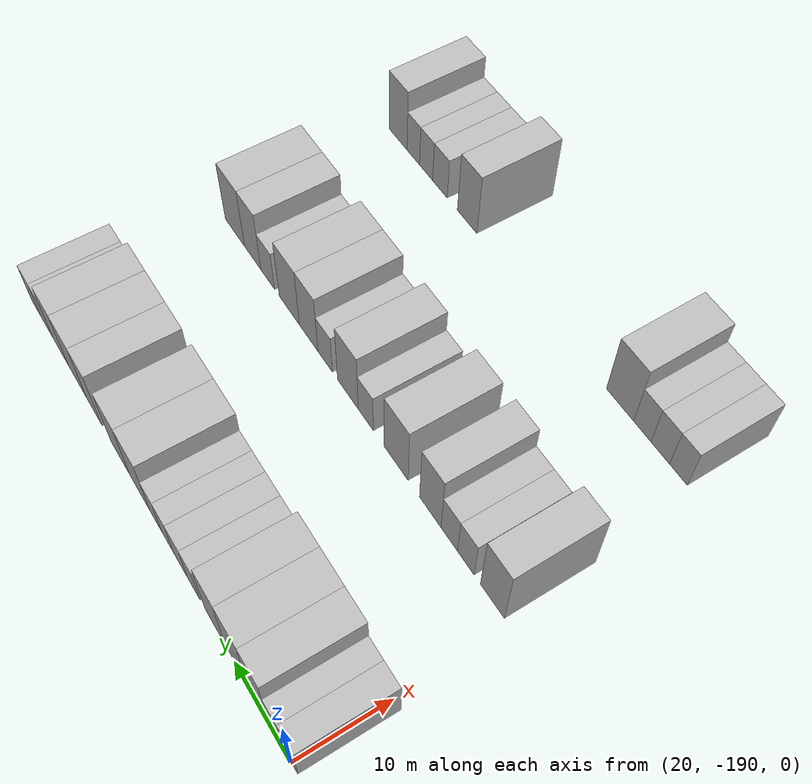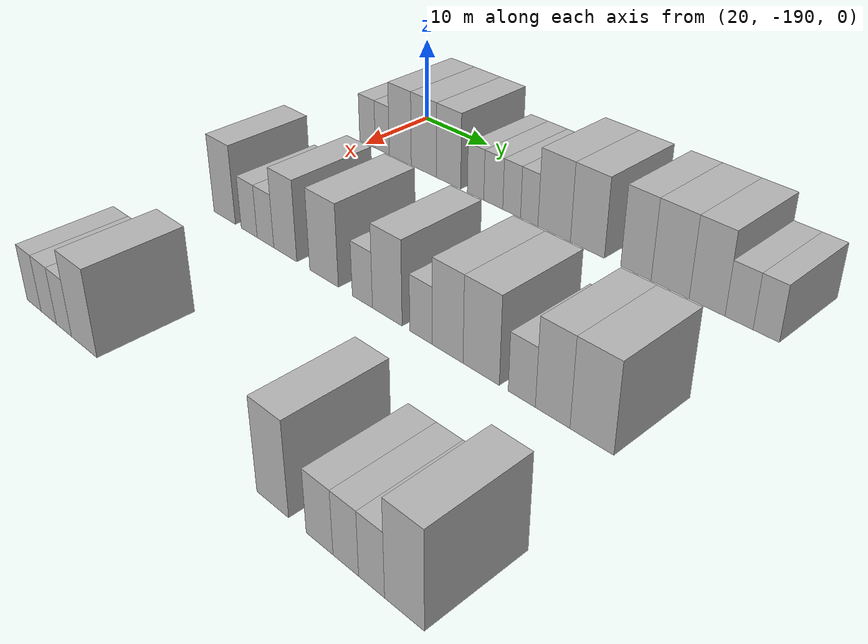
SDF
<sdf version="1.6">
 <world name="default">
  <model name="building_45">
   <static>1</static>
   <pose>25.0000 -189.7467 0 0.000000 0.000000 0.000000</pose>
   <link name="link">
    <pose>0 0 3.00 0 0 0</pose>
    <collision name="collision"><geometry><box><size>10.0000 2.7145 6.0000</size></box></geometry></collision>
    <visual name="visual">
     <cast_shadows>0</cast_shadows>
     <geometry><box><size>10.0000 2.7145 6.0000</size></box></geometry>
     <material>
      <script>
       <uri>model://HANNAS_wall/materials/scripts</uri>
       <uri>model://HANNAS_wall/materials/textures</uri>
       <name>vrc/HANNAS_wall</name>
      </script>
     </material>
    </visual>
   </link>
  </model>
  <model name="building_46">
   <static>1</static>
   <pose>25.0000 -187.1849 0 0.000000 0.000000 0.000000</pose>
   <link name="link">
    <pose>0 0 3.00 0 0 0</pose>
    <collision name="collision"><geometry><box><size>10.0000 2.4091 6.0000</size></box></geometry></collision>
    <visual name="visual">
     <cast_shadows>0</cast_shadows>
     <geometry><box><size>10.0000 2.4091 6.0000</size></box></geometry>
     <material>
      <script>
       <uri>model://HANNAS_wall/materials/scripts</uri>
       <uri>model://HANNAS_wall/materials/textures</uri>
       <name>vrc/HANNAS_wall</name>
      </script>
     </material>
    </visual>
   </link>
  </model>
  <model name="building_47">
   <static>1</static>
   <pose>25.0000 -184.1422 0 0.000000 0.000000 0.000000</pose>
   <link name="link">
    <pose>0 0 4.50 0 0 0</pose>
    <collision name="collision"><geometry><box><size>10.0000 3.6763 9.0000</size></box></geometry></collision>
    <visual name="visual">
     <cast_shadows>0</cast_shadows>
     <geometry><box><size>10.0000 3.6763 9.0000</size></box></geometry>
     <material>
      <script>
       <uri>model://HANNAS_wall/materials/scripts</uri>
       <uri>model://HANNAS_wall/materials/textures</uri>
       <name>vrc/HANNAS_wall</name>
      </script>
     </material>
    </visual>
   </link>
  </model>
  <model name="building_48">
   <static>1</static>
   <pose>25.0000 -180.2692 0 0.000000 0.000000 0.000000</pose>
   <link name="link">
    <pose>0 0 4.50 0 0 0</pose>
    <collision name="collision"><geometry><box><size>10.0000 4.0699 9.0000</size></box></geometry></collision>
    <visual name="visual">
     <cast_shadows>0</cast_shadows>
     <geometry><box><size>10.0000 4.0699 9.0000</size></box></geometry>
     <material>
      <script>
       <uri>model://HANNAS_wall/materials/scripts</uri>
       <uri>model://HANNAS_wall/materials/textures</uri>
       <name>vrc/HANNAS_wall</name>
      </script>
     </material>
    </visual>
   </link>
  </model>
  <model name="building_49">
   <static>1</static>
   <pose>25.0000 -176.3630 0 0.000000 0.000000 0.000000</pose>
   <link name="link">
    <pose>0 0 4.50 0 0 0</pose>
    <collision name="collision"><geometry><box><size>10.0000 3.7425 9.0000</size></box></geometry></collision>
    <visual name="visual">
     <cast_shadows>0</cast_shadows>
     <geometry><box><size>10.0000 3.7425 9.0000</size></box></geometry>
     <material>
      <script>
       <uri>model://HANNAS_wall/materials/scripts</uri>
       <uri>model://HANNAS_wall/materials/textures</uri>
       <name>vrc/HANNAS_wall</name>
      </script>
     </material>
    </visual>
   </link>
  </model>
  <model name="building_50">
   <static>1</static>
   <pose>25.0000 -172.2664 0 0.000000 0.000000 0.000000</pose>
   <link name="link">
    <pose>0 0 3.00 0 0 0</pose>
    <collision name="collision"><geometry><box><size>10.0000 2.4507 6.0000</size></box></geometry></collision>
    <visual name="visual">
     <cast_shadows>0</cast_shadows>
     <geometry><box><size>10.0000 2.4507 6.0000</size></box></geometry>
     <material>
      <script>
       <uri>model://HANNAS_wall/materials/scripts</uri>
       <uri>model://HANNAS_wall/materials/textures</uri>
       <name>vrc/HANNAS_wall</name>
      </script>
     </material>
    </visual>
   </link>
  </model>
  <model name="building_51">
   <static>1</static>
   <pose>25.0000 -169.6635 0 0.000000 0.000000 0.000000</pose>
   <link name="link">
    <pose>0 0 3.00 0 0 0</pose>
    <collision name="collision"><geometry><box><size>10.0000 2.7552 6.0000</size></box></geometry></collision>
    <visual name="visual">
     <cast_shadows>0</cast_shadows>
     <geometry><box><size>10.0000 2.7552 6.0000</size></box></geometry>
     <material>
      <script>
       <uri>model://HANNAS_wall/materials/scripts</uri>
       <uri>model://HANNAS_wall/materials/textures</uri>
       <name>vrc/HANNAS_wall</name>
      </script>
     </material>
    </visual>
   </link>
  </model>
  <model name="building_52">
   <static>1</static>
   <pose>25.0000 -167.0342 0 0.000000 0.000000 0.000000</pose>
   <link name="link">
    <pose>0 0 3.00 0 0 0</pose>
    <collision name="collision"><geometry><box><size>10.0000 2.5033 6.0000</size></box></geometry></collision>
    <visual name="visual">
     <cast_shadows>0</cast_shadows>
     <geometry><box><size>10.0000 2.5033 6.0000</size></box></geometry>
     <material>
      <script>
       <uri>model://HANNAS_wall/materials/scripts</uri>
       <uri>model://HANNAS_wall/materials/textures</uri>
       <name>vrc/HANNAS_wall</name>
      </script>
     </material>
    </visual>
   </link>
  </model>
  <model name="building_53">
   <static>1</static>
   <pose>25.0000 -164.5823 0 0.000000 0.000000 0.000000</pose>
   <link name="link">
    <pose>0 0 3.00 0 0 0</pose>
    <collision name="collision"><geometry><box><size>10.0000 2.4005 6.0000</size></box></geometry></collision>
    <visual name="visual">
     <cast_shadows>0</cast_shadows>
     <geometry><box><size>10.0000 2.4005 6.0000</size></box></geometry>
     <material>
      <script>
       <uri>model://HANNAS_wall/materials/scripts</uri>
       <uri>model://HANNAS_wall/materials/textures</uri>
       <name>vrc/HANNAS_wall</name>
      </script>
     </material>
    </visual>
   </link>
  </model>
  <model name="building_54">
   <static>1</static>
   <pose>25.0000 -161.2179 0 0.000000 0.000000 0.000000</pose>
   <link name="link">
    <pose>0 0 4.50 0 0 0</pose>
    <collision name="collision"><geometry><box><size>10.0000 4.3284 9.0000</size></box></geometry></collision>
    <visual name="visual">
     <cast_shadows>0</cast_shadows>
     <geometry><box><size>10.0000 4.3284 9.0000</size></box></geometry>
     <material>
      <script>
       <uri>model://HANNAS_wall/materials/scripts</uri>
       <uri>model://HANNAS_wall/materials/textures</uri>
       <name>vrc/HANNAS_wall</name>
      </script>
     </material>
    </visual>
   </link>
  </model>
  <model name="building_55">
   <static>1</static>
   <pose>25.0000 -156.8901 0 0.000000 0.000000 0.000000</pose>
   <link name="link">
    <pose>0 0 4.50 0 0 0</pose>
    <collision name="collision"><geometry><box><size>10.0000 4.3271 9.0000</size></box></geometry></collision>
    <visual name="visual">
     <cast_shadows>0</cast_shadows>
     <geometry><box><size>10.0000 4.3271 9.0000</size></box></geometry>
     <material>
      <script>
       <uri>model://HANNAS_wall/materials/scripts</uri>
       <uri>model://HANNAS_wall/materials/textures</uri>
       <name>vrc/HANNAS_wall</name>
      </script>
     </material>
    </visual>
   </link>
  </model>
  <model name="building_56">
   <static>1</static>
   <pose>25.0000 -150.9206 0 0.000000 0.000000 0.000000</pose>
   <link name="link">
    <pose>0 0 4.50 0 0 0</pose>
    <collision name="collision"><geometry><box><size>10.0000 3.6120 9.0000</size></box></geometry></collision>
    <visual name="visual">
     <cast_shadows>0</cast_shadows>
     <geometry><box><size>10.0000 3.6120 9.0000</size></box></geometry>
     <material>
      <script>
       <uri>model://HANNAS_wall/materials/scripts</uri>
       <uri>model://HANNAS_wall/materials/textures</uri>
       <name>vrc/HANNAS_wall</name>
      </script>
     </material>
    </visual>
   </link>
  </model>
  <model name="building_57">
   <static>1</static>
   <pose>25.0000 -146.9471 0 0.000000 0.000000 0.000000</pose>
   <link name="link">
    <pose>0 0 4.50 0 0 0</pose>
    <collision name="collision"><geometry><box><size>10.0000 4.3351 9.0000</size></box></geometry></collision>
    <visual name="visual">
     <cast_shadows>0</cast_shadows>
     <geometry><box><size>10.0000 4.3351 9.0000</size></box></geometry>
     <material>
      <script>
       <uri>model://HANNAS_wall/materials/scripts</uri>
       <uri>model://HANNAS_wall/materials/textures</uri>
       <name>vrc/HANNAS_wall</name>
      </script>
     </material>
    </visual>
   </link>
  </model>
  <model name="building_58">
   <static>1</static>
   <pose>25.0000 -142.8292 0 0.000000 0.000000 0.000000</pose>
   <link name="link">
    <pose>0 0 4.50 0 0 0</pose>
    <collision name="collision"><geometry><box><size>10.0000 3.9007 9.0000</size></box></geometry></collision>
    <visual name="visual">
     <cast_shadows>0</cast_shadows>
     <geometry><box><size>10.0000 3.9007 9.0000</size></box></geometry>
     <material>
      <script>
       <uri>model://HANNAS_wall/materials/scripts</uri>
       <uri>model://HANNAS_wall/materials/textures</uri>
       <name>vrc/HANNAS_wall</name>
      </script>
     </material>
    </visual>
   </link>
  </model>
  <model name="building_59">
   <static>1</static>
   <pose>25.0000 -139.4191 0 0.000000 0.000000 0.000000</pose>
   <link name="link">
    <pose>0 0 3.00 0 0 0</pose>
    <collision name="collision"><geometry><box><size>10.0000 2.9196 6.0000</size></box></geometry></collision>
    <visual name="visual">
     <cast_shadows>0</cast_shadows>
     <geometry><box><size>10.0000 2.9196 6.0000</size></box></geometry>
     <material>
      <script>
       <uri>model://HANNAS_wall/materials/scripts</uri>
       <uri>model://HANNAS_wall/materials/textures</uri>
       <name>vrc/HANNAS_wall</name>
      </script>
     </material>
    </visual>
   </link>
  </model>
  <model name="building_60">
   <static>1</static>
   <pose>25.0000 -136.6225 0 0.000000 0.000000 0.000000</pose>
   <link name="link">
    <pose>0 0 3.00 0 0 0</pose>
    <collision name="collision"><geometry><box><size>10.0000 2.6735 6.0000</size></box></geometry></collision>
    <visual name="visual">
     <cast_shadows>0</cast_shadows>
     <geometry><box><size>10.0000 2.6735 6.0000</size></box></geometry>
     <material>
      <script>
       <uri>model://HANNAS_wall/materials/scripts</uri>
       <uri>model://HANNAS_wall/materials/textures</uri>
       <name>vrc/HANNAS_wall</name>
      </script>
     </material>
    </visual>
   </link>
  </model>
  <model name="building_243">
   <static>1</static>
   <pose>47.0000 -187.2231 0 0.000000 0.000000 0.000000</pose>
   <link name="link">
    <pose>0 0 4.50 0 0 0</pose>
    <collision name="collision"><geometry><box><size>10.0000 3.7692 9.0000</size></box></geometry></collision>
    <visual name="visual">
     <cast_shadows>0</cast_shadows>
     <geometry><box><size>10.0000 3.7692 9.0000</size></box></geometry>
     <material>
      <script>
       <uri>model://HANNAS_wall/materials/scripts</uri>
       <uri>model://HANNAS_wall/materials/textures</uri>
       <name>vrc/HANNAS_wall</name>
      </script>
     </material>
    </visual>
   </link>
  </model>
  <model name="building_244">
   <static>1</static>
   <pose>47.0000 -182.9879 0 0.000000 0.000000 0.000000</pose>
   <link name="link">
    <pose>0 0 3.00 0 0 0</pose>
    <collision name="collision"><geometry><box><size>10.0000 2.7013 6.0000</size></box></geometry></collision>
    <visual name="visual">
     <cast_shadows>0</cast_shadows>
     <geometry><box><size>10.0000 2.7013 6.0000</size></box></geometry>
     <material>
      <script>
       <uri>model://HANNAS_wall/materials/scripts</uri>
       <uri>model://HANNAS_wall/materials/textures</uri>
       <name>vrc/HANNAS_wall</name>
      </script>
     </material>
    </visual>
   </link>
  </model>
  <model name="building_245">
   <static>1</static>
   <pose>47.0000 -180.2691 0 0.000000 0.000000 0.000000</pose>
   <link name="link">
    <pose>0 0 3.00 0 0 0</pose>
    <collision name="collision"><geometry><box><size>10.0000 2.7363 6.0000</size></box></geometry></collision>
    <visual name="visual">
     <cast_shadows>0</cast_shadows>
     <geometry><box><size>10.0000 2.7363 6.0000</size></box></geometry>
     <material>
      <script>
       <uri>model://HANNAS_wall/materials/scripts</uri>
       <uri>model://HANNAS_wall/materials/textures</uri>
       <name>vrc/HANNAS_wall</name>
      </script>
     </material>
    </visual>
   </link>
  </model>
  <model name="building_246">
   <static>1</static>
   <pose>47.0000 -177.0716 0 0.000000 0.000000 0.000000</pose>
   <link name="link">
    <pose>0 0 4.50 0 0 0</pose>
    <collision name="collision"><geometry><box><size>10.0000 3.6588 9.0000</size></box></geometry></collision>
    <visual name="visual">
     <cast_shadows>0</cast_shadows>
     <geometry><box><size>10.0000 3.6588 9.0000</size></box></geometry>
     <material>
      <script>
       <uri>model://HANNAS_wall/materials/scripts</uri>
       <uri>model://HANNAS_wall/materials/textures</uri>
       <name>vrc/HANNAS_wall</name>
      </script>
     </material>
    </visual>
   </link>
  </model>
  <model name="building_247">
   <static>1</static>
   <pose>47.0000 -171.1085 0 0.000000 0.000000 0.000000</pose>
   <link name="link">
    <pose>0 0 4.50 0 0 0</pose>
    <collision name="collision"><geometry><box><size>10.0000 4.2673 9.0000</size></box></geometry></collision>
    <visual name="visual">
     <cast_shadows>0</cast_shadows>
     <geometry><box><size>10.0000 4.2673 9.0000</size></box></geometry>
     <material>
      <script>
       <uri>model://HANNAS_wall/materials/scripts</uri>
       <uri>model://HANNAS_wall/materials/textures</uri>
       <name>vrc/HANNAS_wall</name>
      </script>
     </material>
    </visual>
   </link>
  </model>
  <model name="building_248">
   <static>1</static>
   <pose>47.0000 -165.5632 0 0.000000 0.000000 0.000000</pose>
   <link name="link">
    <pose>0 0 3.00 0 0 0</pose>
    <collision name="collision"><geometry><box><size>10.0000 2.8233 6.0000</size></box></geometry></collision>
    <visual name="visual">
     <cast_shadows>0</cast_shadows>
     <geometry><box><size>10.0000 2.8233 6.0000</size></box></geometry>
     <material>
      <script>
       <uri>model://HANNAS_wall/materials/scripts</uri>
       <uri>model://HANNAS_wall/materials/textures</uri>
       <name>vrc/HANNAS_wall</name>
      </script>
     </material>
    </visual>
   </link>
  </model>
  <model name="building_249">
   <static>1</static>
   <pose>47.0000 -162.1618 0 0.000000 0.000000 0.000000</pose>
   <link name="link">
    <pose>0 0 4.50 0 0 0</pose>
    <collision name="collision"><geometry><box><size>10.0000 3.9795 9.0000</size></box></geometry></collision>
    <visual name="visual">
     <cast_shadows>0</cast_shadows>
     <geometry><box><size>10.0000 3.9795 9.0000</size></box></geometry>
     <material>
      <script>
       <uri>model://HANNAS_wall/materials/scripts</uri>
       <uri>model://HANNAS_wall/materials/textures</uri>
       <name>vrc/HANNAS_wall</name>
      </script>
     </material>
    </visual>
   </link>
  </model>
  <model name="building_250">
   <static>1</static>
   <pose>47.0000 -157.7402 0 0.000000 0.000000 0.000000</pose>
   <link name="link">
    <pose>0 0 3.00 0 0 0</pose>
    <collision name="collision"><geometry><box><size>10.0000 2.8637 6.0000</size></box></geometry></collision>
    <visual name="visual">
     <cast_shadows>0</cast_shadows>
     <geometry><box><size>10.0000 2.8637 6.0000</size></box></geometry>
     <material>
      <script>
       <uri>model://HANNAS_wall/materials/scripts</uri>
       <uri>model://HANNAS_wall/materials/textures</uri>
       <name>vrc/HANNAS_wall</name>
      </script>
     </material>
    </visual>
   </link>
  </model>
  <model name="building_251">
   <static>1</static>
   <pose>47.0000 -154.4268 0 0.000000 0.000000 0.000000</pose>
   <link name="link">
    <pose>0 0 4.50 0 0 0</pose>
    <collision name="collision"><geometry><box><size>10.0000 3.7630 9.0000</size></box></geometry></collision>
    <visual name="visual">
     <cast_shadows>0</cast_shadows>
     <geometry><box><size>10.0000 3.7630 9.0000</size></box></geometry>
     <material>
      <script>
       <uri>model://HANNAS_wall/materials/scripts</uri>
       <uri>model://HANNAS_wall/materials/textures</uri>
       <name>vrc/HANNAS_wall</name>
      </script>
     </material>
    </visual>
   </link>
  </model>
  <model name="building_252">
   <static>1</static>
   <pose>47.0000 -150.4282 0 0.000000 0.000000 0.000000</pose>
   <link name="link">
    <pose>0 0 4.50 0 0 0</pose>
    <collision name="collision"><geometry><box><size>10.0000 4.2341 9.0000</size></box></geometry></collision>
    <visual name="visual">
     <cast_shadows>0</cast_shadows>
     <geometry><box><size>10.0000 4.2341 9.0000</size></box></geometry>
     <material>
      <script>
       <uri>model://HANNAS_wall/materials/scripts</uri>
       <uri>model://HANNAS_wall/materials/textures</uri>
       <name>vrc/HANNAS_wall</name>
      </script>
     </material>
    </visual>
   </link>
  </model>
  <model name="building_253">
   <static>1</static>
   <pose>47.0000 -145.8247 0 0.000000 0.000000 0.000000</pose>
   <link name="link">
    <pose>0 0 3.00 0 0 0</pose>
    <collision name="collision"><geometry><box><size>10.0000 2.9729 6.0000</size></box></geometry></collision>
    <visual name="visual">
     <cast_shadows>0</cast_shadows>
     <geometry><box><size>10.0000 2.9729 6.0000</size></box></geometry>
     <material>
      <script>
       <uri>model://HANNAS_wall/materials/scripts</uri>
       <uri>model://HANNAS_wall/materials/textures</uri>
       <name>vrc/HANNAS_wall</name>
      </script>
     </material>
    </visual>
   </link>
  </model>
  <model name="building_254">
   <static>1</static>
   <pose>47.0000 -142.5172 0 0.000000 0.000000 0.000000</pose>
   <link name="link">
    <pose>0 0 4.50 0 0 0</pose>
    <collision name="collision"><geometry><box><size>10.0000 3.6422 9.0000</size></box></geometry></collision>
    <visual name="visual">
     <cast_shadows>0</cast_shadows>
     <geometry><box><size>10.0000 3.6422 9.0000</size></box></geometry>
     <material>
      <script>
       <uri>model://HANNAS_wall/materials/scripts</uri>
       <uri>model://HANNAS_wall/materials/textures</uri>
       <name>vrc/HANNAS_wall</name>
      </script>
     </material>
    </visual>
   </link>
  </model>
  <model name="building_255">
   <static>1</static>
   <pose>47.0000 -138.5056 0 0.000000 0.000000 0.000000</pose>
   <link name="link">
    <pose>0 0 4.50 0 0 0</pose>
    <collision name="collision"><geometry><box><size>10.0000 4.3810 9.0000</size></box></geometry></collision>
    <visual name="visual">
     <cast_shadows>0</cast_shadows>
     <geometry><box><size>10.0000 4.3810 9.0000</size></box></geometry>
     <material>
      <script>
       <uri>model://HANNAS_wall/materials/scripts</uri>
       <uri>model://HANNAS_wall/materials/textures</uri>
       <name>vrc/HANNAS_wall</name>
      </script>
     </material>
    </visual>
   </link>
  </model>
  <model name="building_434">
   <static>1</static>
   <pose>69.0000 -186.1543 0 0.000000 0.000000 0.000000</pose>
   <link name="link">
    <pose>0 0 3.00 0 0 0</pose>
    <collision name="collision"><geometry><box><size>10.0000 2.6352 6.0000</size></box></geometry></collision>
    <visual name="visual">
     <cast_shadows>0</cast_shadows>
     <geometry><box><size>10.0000 2.6352 6.0000</size></box></geometry>
     <material>
      <script>
       <uri>model://HANNAS_wall/materials/scripts</uri>
       <uri>model://HANNAS_wall/materials/textures</uri>
       <name>vrc/HANNAS_wall</name>
      </script>
     </material>
    </visual>
   </link>
  </model>
  <model name="building_435">
   <static>1</static>
   <pose>69.0000 -183.4346 0 0.000000 0.000000 0.000000</pose>
   <link name="link">
    <pose>0 0 3.00 0 0 0</pose>
    <collision name="collision"><geometry><box><size>10.0000 2.8043 6.0000</size></box></geometry></collision>
    <visual name="visual">
     <cast_shadows>0</cast_shadows>
     <geometry><box><size>10.0000 2.8043 6.0000</size></box></geometry>
     <material>
      <script>
       <uri>model://HANNAS_wall/materials/scripts</uri>
       <uri>model://HANNAS_wall/materials/textures</uri>
       <name>vrc/HANNAS_wall</name>
      </script>
     </material>
    </visual>
   </link>
  </model>
  <model name="building_436">
   <static>1</static>
   <pose>69.0000 -180.6923 0 0.000000 0.000000 0.000000</pose>
   <link name="link">
    <pose>0 0 3.00 0 0 0</pose>
    <collision name="collision"><geometry><box><size>10.0000 2.6802 6.0000</size></box></geometry></collision>
    <visual name="visual">
     <cast_shadows>0</cast_shadows>
     <geometry><box><size>10.0000 2.6802 6.0000</size></box></geometry>
     <material>
      <script>
       <uri>model://HANNAS_wall/materials/scripts</uri>
       <uri>model://HANNAS_wall/materials/textures</uri>
       <name>vrc/HANNAS_wall</name>
      </script>
     </material>
    </visual>
   </link>
  </model>
  <model name="building_437">
   <static>1</static>
   <pose>69.0000 -177.1961 0 0.000000 0.000000 0.000000</pose>
   <link name="link">
    <pose>0 0 4.50 0 0 0</pose>
    <collision name="collision"><geometry><box><size>10.0000 4.3123 9.0000</size></box></geometry></collision>
    <visual name="visual">
     <cast_shadows>0</cast_shadows>
     <geometry><box><size>10.0000 4.3123 9.0000</size></box></geometry>
     <material>
      <script>
       <uri>model://HANNAS_wall/materials/scripts</uri>
       <uri>model://HANNAS_wall/materials/textures</uri>
       <name>vrc/HANNAS_wall</name>
      </script>
     </material>
    </visual>
   </link>
  </model>
  <model name="building_438">
   <static>1</static>
   <pose>69.0000 -150.3737 0 0.000000 0.000000 0.000000</pose>
   <link name="link">
    <pose>0 0 4.50 0 0 0</pose>
    <collision name="collision"><geometry><box><size>10.0000 3.7775 9.0000</size></box></geometry></collision>
    <visual name="visual">
     <cast_shadows>0</cast_shadows>
     <geometry><box><size>10.0000 3.7775 9.0000</size></box></geometry>
     <material>
      <script>
       <uri>model://HANNAS_wall/materials/scripts</uri>
       <uri>model://HANNAS_wall/materials/textures</uri>
       <name>vrc/HANNAS_wall</name>
      </script>
     </material>
    </visual>
   </link>
  </model>
  <model name="building_439">
   <static>1</static>
   <pose>69.0000 -145.0125 0 0.000000 0.000000 0.000000</pose>
   <link name="link">
    <pose>0 0 3.00 0 0 0</pose>
    <collision name="collision"><geometry><box><size>10.0000 2.9449 6.0000</size></box></geometry></collision>
    <visual name="visual">
     <cast_shadows>0</cast_shadows>
     <geometry><box><size>10.0000 2.9449 6.0000</size></box></geometry>
     <material>
      <script>
       <uri>model://HANNAS_wall/materials/scripts</uri>
       <uri>model://HANNAS_wall/materials/textures</uri>
       <name>vrc/HANNAS_wall</name>
      </script>
     </material>
    </visual>
   </link>
  </model>
  <model name="building_440">
   <static>1</static>
   <pose>69.0000 -142.1928 0 0.000000 0.000000 0.000000</pose>
   <link name="link">
    <pose>0 0 3.00 0 0 0</pose>
    <collision name="collision"><geometry><box><size>10.0000 2.6945 6.0000</size></box></geometry></collision>
    <visual name="visual">
     <cast_shadows>0</cast_shadows>
     <geometry><box><size>10.0000 2.6945 6.0000</size></box></geometry>
     <material>
      <script>
       <uri>model://HANNAS_wall/materials/scripts</uri>
       <uri>model://HANNAS_wall/materials/textures</uri>
       <name>vrc/HANNAS_wall</name>
      </script>
     </material>
    </visual>
   </link>
  </model>
  <model name="building_441">
   <static>1</static>
   <pose>69.0000 -139.5391 0 0.000000 0.000000 0.000000</pose>
   <link name="link">
    <pose>0 0 3.00 0 0 0</pose>
    <collision name="collision"><geometry><box><size>10.0000 2.6129 6.0000</size></box></geometry></collision>
    <visual name="visual">
     <cast_shadows>0</cast_shadows>
     <geometry><box><size>10.0000 2.6129 6.0000</size></box></geometry>
     <material>
      <script>
       <uri>model://HANNAS_wall/materials/scripts</uri>
       <uri>model://HANNAS_wall/materials/textures</uri>
       <name>vrc/HANNAS_wall</name>
      </script>
     </material>
    </visual>
   </link>
  </model>
  <model name="building_442">
   <static>1</static>
   <pose>69.0000 -136.3248 0 0.000000 0.000000 0.000000</pose>
   <link name="link">
    <pose>0 0 4.50 0 0 0</pose>
    <collision name="collision"><geometry><box><size>10.0000 3.8156 9.0000</size></box></geometry></collision>
    <visual name="visual">
     <cast_shadows>0</cast_shadows>
     <geometry><box><size>10.0000 3.8156 9.0000</size></box></geometry>
     <material>
      <script>
       <uri>model://HANNAS_wall/materials/scripts</uri>
       <uri>model://HANNAS_wall/materials/textures</uri>
       <name>vrc/HANNAS_wall</name>
      </script>
     </material>
    </visual>
   </link>
  </model>
 </world>
</sdf>
